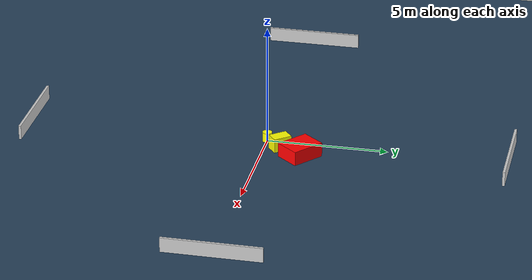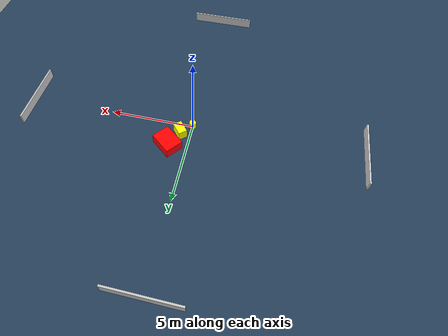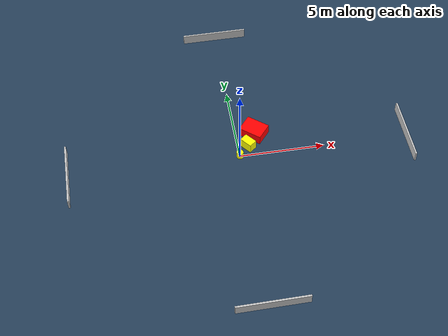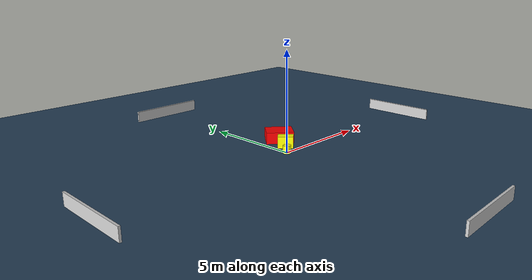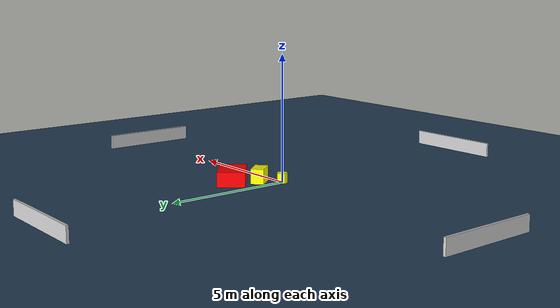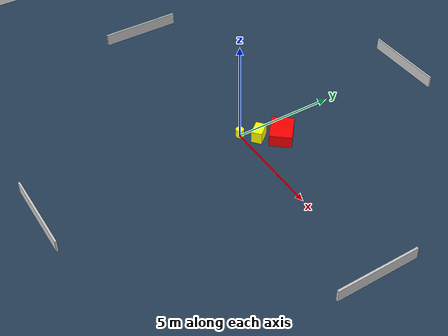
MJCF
<?xml version="1.0" ?>
<mujoco model="generated_environment">
  <option timestep="0.01" integrator="RK4" cone="elliptic"/>
  <default>
    <geom density="1"/>
  </default>
  <asset>
    <texture builtin="gradient" height="3072" name="skybox" rgb1="0.3 0.5 0.7" rgb2="0 0 0" type="skybox" width="512"/>
    <texture builtin="checker" height="300" name="groundplane" rgb1="0.2 0.3 0.4" rgb2="0.1 0.2 0.3" type="2d" width="300"/>
    <material name="groundplane" reflectance="0.2" texrepeat="5 5" texture="groundplane"/>
  </asset>
  <worldbody>
    <light dir="0 0 -1" directional="true" pos="0 0 1.5"/>
    <geom condim="3" friction="0.5 0.005 0.001" material="groundplane" name="floor" pos="0 0 0" size="0 0 0.05" type="plane"/>
    <body name="walls">
      <geom name="wall_1" condim="4" pos="-10.0 0.0 0.3" rgba="0.800000011920929 0.800000011920929 0.800000011920929 1.0" size="0.05 2.0 0.3" type="box"/>
      <geom name="wall_2" condim="4" pos="10.0 0.0 0.3" rgba="0.800000011920929 0.800000011920929 0.800000011920929 1.0" size="0.05 2.0 0.3" type="box"/>
      <geom name="wall_3" condim="4" pos="0.0 -10.0 0.3" rgba="0.800000011920929 0.800000011920929 0.800000011920929 1.0" size="2.0 0.05 0.3" type="box"/>
      <geom name="wall_4" condim="4" pos="0.0 10.0 0.3" rgba="0.800000011920929 0.800000011920929 0.800000011920929 1.0" size="2.0 0.05 0.3" type="box"/>
    </body>
    <body name="robot">
      <joint name="joint_x" type="slide" pos="0 0 0" axis="1 0 0"/>
      <joint name="joint_y" type="slide" pos="0 0 0" axis="0 1 0"/>
      <geom name="robot" type="cylinder" pos="0.0 0.0 0.2" size="0.2 0.2 0.0" mass="5.0" friction="1.0 0.005 0.0001" condim="4" rgba="1.0 1.0 0.0 1.0"/>
    </body>
    <body name="obstacle_1_movable">
      <geom name="obstacle_1_movable" condim="4" pos="0.6014456429775429 0.6599234941685738 0.3" euler="0 0 129.06413066833755" friction="0.0 0.005 0.001" rgba="1.0 1.0 0.0 1.0" size="0.3874229820486584 0.25454706893827306 0.3" type="box" mass="0.1"/>
      <joint type="free"/>
    </body>
    <body name="obstacle_2_static">
      <geom name="obstacle_2_static" condim="4" pos="1.114036239335694 1.5980553964943005 0.3" euler="0 0 230.3198668207726" friction="0.0 0.005 0.001" rgba="1.0 0.0 0.0 1.0" size="0.5385475968009283 0.7023159326484436 0.3" type="box"/>
    </body>
  </worldbody>
  <actuator>
    <motor name="actuator_x" joint="joint_x" gear="1" ctrlrange="-1 1"/>
    <motor name="actuator_y" joint="joint_y" gear="1" ctrlrange="-1 1"/>
  </actuator>
</mujoco>
